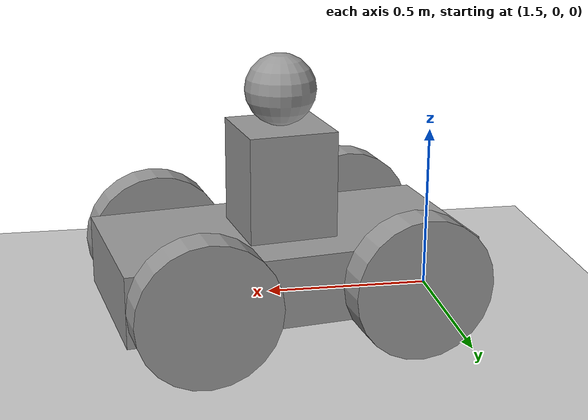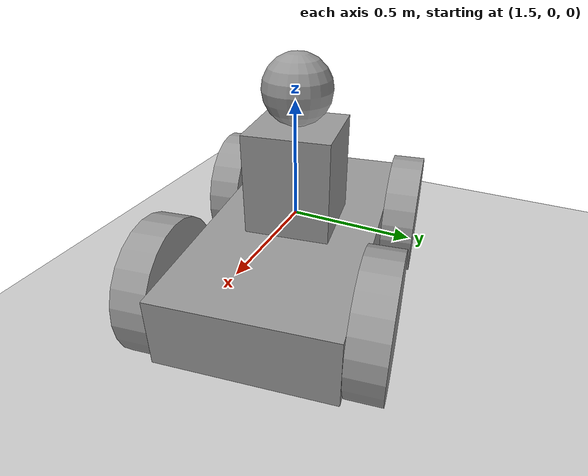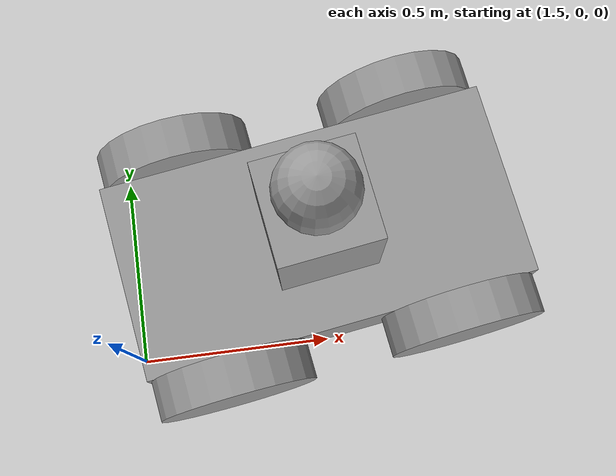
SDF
<sdf version="1.6">
 <world name="default">
  <model name="ground_plane">
   <static>1</static>
   <link name="link">
    <collision name="collision">
     <geometry><plane><normal>0 0 1</normal><size>100 100</size></plane></geometry>
     <surface>
      <contact><collide_bitmask>65535</collide_bitmask></contact>
      <friction><ode><mu>100</mu><mu2>50</mu2></ode></friction>
     </surface>
    </collision>
    <visual name="visual">
     <cast_shadows>0</cast_shadows>
     <geometry><plane><normal>0 0 1</normal><size>100 100</size></plane></geometry>
     <material>
      <script><uri>file://media/materials/scripts/gazebo.material</uri><name>Gazebo/Grey</name></script>
     </material>
    </visual>
   </link>
  </model>
  <model name="robot">
   <link name="link_0">
    <pose>0 0 -0.109999 0 -0 0</pose>
    <inertial>
     <mass>1</mass>
     <inertia>
      <ixx>0.166667</ixx>
      <ixy>0</ixy>
      <ixz>0</ixz>
      <iyy>0.166667</iyy>
      <iyz>0</iyz>
      <izz>0.166667</izz>
     </inertia>
    </inertial>
    <visual name="visual">
     <geometry><box><size>1 0.5 0.2</size></box></geometry>
     <material>
      <lighting>1</lighting>
      <script><uri>file://media/materials/scripts/gazebo.material</uri><name>Gazebo/Grey</name></script>
      <shader type="pixel"><normal_map>__default__</normal_map></shader>
      <ambient>0.3 0.3 0.3 1</ambient>
      <diffuse>0.7 0.7 0.7 1</diffuse>
      <specular>0.01 0.01 0.01 1</specular>
      <emissive>0 0 0 1</emissive>
     </material>
    </visual>
    <collision name="collision">
     <geometry><box><size>1 0.5 0.2</size></box></geometry>
     <surface>
      <friction>
       <ode><mu>1</mu><mu2>1</mu2><fdir1>0 0 0</fdir1><slip1>0</slip1><slip2>0</slip2></ode>
       <torsional>
        <coefficient>1</coefficient>
        <patch_radius>0</patch_radius>
        <surface_radius>0</surface_radius>
        <use_patch_radius>1</use_patch_radius>
        <ode><slip>0</slip></ode>
       </torsional>
      </friction>
      <bounce><restitution_coefficient>0</restitution_coefficient><threshold>1e+06</threshold></bounce>
      <contact>
       <collide_without_contact>0</collide_without_contact>
       <collide_without_contact_bitmask>1</collide_without_contact_bitmask>
       <collide_bitmask>1</collide_bitmask>
       <ode>
        <soft_cfm>0</soft_cfm>
        <soft_erp>0.2</soft_erp>
        <kp>1e+13</kp>
        <kd>1</kd>
        <max_vel>0.01</max_vel>
        <min_depth>0</min_depth>
       </ode>
       <bullet>
        <split_impulse>1</split_impulse>
        <split_impulse_penetration_threshold>-0.01</split_impulse_penetration_threshold>
        <soft_cfm>0</soft_cfm>
        <soft_erp>0.2</soft_erp>
        <kp>1e+13</kp>
        <kd>1</kd>
       </bullet>
      </contact>
     </surface>
    </collision>
   </link>
   <link name="link_1">
    <pose>-0.3 -0.300019 -0.090004 1.5707 -0 0</pose>
    <inertial>
     <mass>1</mass>
     <inertia><ixx>0.145833</ixx><ixy>0</ixy><ixz>0</ixz><iyy>0.145833</iyy><iyz>0</iyz><izz>0.125</izz></inertia>
    </inertial>
    <visual name="visual">
     <geometry><cylinder><radius>0.2</radius><length>0.1</length></cylinder></geometry>
     <material>
      <lighting>1</lighting>
      <script><uri>file://media/materials/scripts/gazebo.material</uri><name>Gazebo/Grey</name></script>
      <shader type="pixel"><normal_map>__default__</normal_map></shader>
      <ambient>0.3 0.3 0.3 1</ambient>
      <diffuse>0.7 0.7 0.7 1</diffuse>
      <specular>0.01 0.01 0.01 1</specular>
      <emissive>0 0 0 1</emissive>
     </material>
    </visual>
    <collision name="collision">
     <geometry><cylinder><radius>0.2</radius><length>0.1</length></cylinder></geometry>
     <surface>
      <friction>
       <ode><mu>1</mu><mu2>1</mu2><fdir1>0 0 0</fdir1><slip1>0</slip1><slip2>0</slip2></ode>
       <torsional>
        <coefficient>1</coefficient>
        <patch_radius>0</patch_radius>
        <surface_radius>0</surface_radius>
        <use_patch_radius>1</use_patch_radius>
        <ode><slip>0</slip></ode>
       </torsional>
      </friction>
      <bounce><restitution_coefficient>0</restitution_coefficient><threshold>1e+06</threshold></bounce>
      <contact>
       <collide_without_contact>0</collide_without_contact>
       <collide_without_contact_bitmask>1</collide_without_contact_bitmask>
       <collide_bitmask>1</collide_bitmask>
       <ode>
        <soft_cfm>0</soft_cfm>
        <soft_erp>0.2</soft_erp>
        <kp>1e+13</kp>
        <kd>1</kd>
        <max_vel>0.01</max_vel>
        <min_depth>0</min_depth>
       </ode>
       <bullet>
        <split_impulse>1</split_impulse>
        <split_impulse_penetration_threshold>-0.01</split_impulse_penetration_threshold>
        <soft_cfm>0</soft_cfm>
        <soft_erp>0.2</soft_erp>
        <kp>1e+13</kp>
        <kd>1</kd>
       </bullet>
      </contact>
     </surface>
    </collision>
   </link>
   <link name="link_1_clone">
    <pose>-0.3 0.300019 -0.109999 1.5707 -0 0</pose>
    <inertial>
     <mass>1</mass>
     <inertia><ixx>0.145833</ixx><ixy>0</ixy><ixz>0</ixz><iyy>0.145833</iyy><iyz>0</iyz><izz>0.125</izz></inertia>
    </inertial>
    <visual name="visual">
     <geometry><cylinder><radius>0.2</radius><length>0.1</length></cylinder></geometry>
     <material>
      <lighting>1</lighting>
      <script><uri>file://media/materials/scripts/gazebo.material</uri><name>Gazebo/Grey</name></script>
      <shader type="pixel"><normal_map>__default__</normal_map></shader>
      <ambient>0.3 0.3 0.3 1</ambient>
      <diffuse>0.7 0.7 0.7 1</diffuse>
      <specular>0.01 0.01 0.01 1</specular>
      <emissive>0 0 0 1</emissive>
     </material>
    </visual>
    <collision name="collision">
     <geometry><cylinder><radius>0.2</radius><length>0.1</length></cylinder></geometry>
     <surface>
      <friction>
       <ode><mu>1</mu><mu2>1</mu2><fdir1>0 0 0</fdir1><slip1>0</slip1><slip2>0</slip2></ode>
       <torsional>
        <coefficient>1</coefficient>
        <patch_radius>0</patch_radius>
        <surface_radius>0</surface_radius>
        <use_patch_radius>1</use_patch_radius>
        <ode><slip>0</slip></ode>
       </torsional>
      </friction>
      <bounce><restitution_coefficient>0</restitution_coefficient><threshold>1e+06</threshold></bounce>
      <contact>
       <collide_without_contact>0</collide_without_contact>
       <collide_without_contact_bitmask>1</collide_without_contact_bitmask>
       <collide_bitmask>1</collide_bitmask>
       <ode>
        <soft_cfm>0</soft_cfm>
        <soft_erp>0.2</soft_erp>
        <kp>1e+13</kp>
        <kd>1</kd>
        <max_vel>0.01</max_vel>
        <min_depth>0</min_depth>
       </ode>
       <bullet>
        <split_impulse>1</split_impulse>
        <split_impulse_penetration_threshold>-0.01</split_impulse_penetration_threshold>
        <soft_cfm>0</soft_cfm>
        <soft_erp>0.2</soft_erp>
        <kp>1e+13</kp>
        <kd>1</kd>
       </bullet>
      </contact>
     </surface>
    </collision>
   </link>
   <link name="link_1_clone_clone">
    <pose>0.3 -0.300019 -0.109999 1.5707 -0 0</pose>
    <inertial>
     <mass>1</mass>
     <inertia><ixx>0.145833</ixx><ixy>0</ixy><ixz>0</ixz><iyy>0.145833</iyy><iyz>0</iyz><izz>0.125</izz></inertia>
    </inertial>
    <visual name="visual">
     <geometry><cylinder><radius>0.2</radius><length>0.1</length></cylinder></geometry>
     <material>
      <lighting>1</lighting>
      <script><uri>file://media/materials/scripts/gazebo.material</uri><name>Gazebo/Grey</name></script>
      <shader type="pixel"><normal_map>__default__</normal_map></shader>
      <ambient>0.3 0.3 0.3 1</ambient>
      <diffuse>0.7 0.7 0.7 1</diffuse>
      <specular>0.01 0.01 0.01 1</specular>
      <emissive>0 0 0 1</emissive>
     </material>
    </visual>
    <collision name="collision">
     <geometry><cylinder><radius>0.2</radius><length>0.1</length></cylinder></geometry>
     <surface>
      <friction>
       <ode><mu>1</mu><mu2>1</mu2><fdir1>0 0 0</fdir1><slip1>0</slip1><slip2>0</slip2></ode>
       <torsional>
        <coefficient>1</coefficient>
        <patch_radius>0</patch_radius>
        <surface_radius>0</surface_radius>
        <use_patch_radius>1</use_patch_radius>
        <ode><slip>0</slip></ode>
       </torsional>
      </friction>
      <bounce><restitution_coefficient>0</restitution_coefficient><threshold>1e+06</threshold></bounce>
      <contact>
       <collide_without_contact>0</collide_without_contact>
       <collide_without_contact_bitmask>1</collide_without_contact_bitmask>
       <collide_bitmask>1</collide_bitmask>
       <ode>
        <soft_cfm>0</soft_cfm>
        <soft_erp>0.2</soft_erp>
        <kp>1e+13</kp>
        <kd>1</kd>
        <max_vel>0.01</max_vel>
        <min_depth>0</min_depth>
       </ode>
       <bullet>
        <split_impulse>1</split_impulse>
        <split_impulse_penetration_threshold>-0.01</split_impulse_penetration_threshold>
        <soft_cfm>0</soft_cfm>
        <soft_erp>0.2</soft_erp>
        <kp>1e+13</kp>
        <kd>1</kd>
       </bullet>
      </contact>
     </surface>
    </collision>
   </link>
   <link name="link_1_clone_clone_clone">
    <pose>0.3 0.300019 -0.109999 1.5707 -0 0</pose>
    <inertial>
     <mass>1</mass>
     <inertia><ixx>0.145833</ixx><ixy>0</ixy><ixz>0</ixz><iyy>0.145833</iyy><iyz>0</iyz><izz>0.125</izz></inertia>
    </inertial>
    <visual name="visual">
     <geometry><cylinder><radius>0.2</radius><length>0.1</length></cylinder></geometry>
     <material>
      <lighting>1</lighting>
      <script><uri>file://media/materials/scripts/gazebo.material</uri><name>Gazebo/Grey</name></script>
      <shader type="pixel"><normal_map>__default__</normal_map></shader>
      <ambient>0.3 0.3 0.3 1</ambient>
      <diffuse>0.7 0.7 0.7 1</diffuse>
      <specular>0.01 0.01 0.01 1</specular>
      <emissive>0 0 0 1</emissive>
     </material>
    </visual>
    <collision name="collision">
     <geometry><cylinder><radius>0.2</radius><length>0.1</length></cylinder></geometry>
     <surface>
      <friction>
       <ode><mu>1</mu><mu2>1</mu2><fdir1>0 0 0</fdir1><slip1>0</slip1><slip2>0</slip2></ode>
       <torsional>
        <coefficient>1</coefficient>
        <patch_radius>0</patch_radius>
        <surface_radius>0</surface_radius>
        <use_patch_radius>1</use_patch_radius>
        <ode><slip>0</slip></ode>
       </torsional>
      </friction>
      <bounce><restitution_coefficient>0</restitution_coefficient><threshold>1e+06</threshold></bounce>
      <contact>
       <collide_without_contact>0</collide_without_contact>
       <collide_without_contact_bitmask>1</collide_without_contact_bitmask>
       <collide_bitmask>1</collide_bitmask>
       <ode>
        <soft_cfm>0</soft_cfm>
        <soft_erp>0.2</soft_erp>
        <kp>1e+13</kp>
        <kd>1</kd>
        <max_vel>0.01</max_vel>
        <min_depth>0</min_depth>
       </ode>
       <bullet>
        <split_impulse>1</split_impulse>
        <split_impulse_penetration_threshold>-0.01</split_impulse_penetration_threshold>
        <soft_cfm>0</soft_cfm>
        <soft_erp>0.2</soft_erp>
        <kp>1e+13</kp>
        <kd>1</kd>
       </bullet>
      </contact>
     </surface>
    </collision>
   </link>
   <link name="link_2">
    <pose>-0 0 0.140001 0 -0 0</pose>
    <inertial>
     <mass>1</mass>
     <inertia>
      <ixx>0.166667</ixx>
      <ixy>0</ixy>
      <ixz>0</ixz>
      <iyy>0.166667</iyy>
      <iyz>0</iyz>
      <izz>0.166667</izz>
     </inertia>
    </inertial>
    <visual name="visual">
     <geometry><box><size>0.25 0.25 0.3</size></box></geometry>
     <material>
      <lighting>1</lighting>
      <script><uri>file://media/materials/scripts/gazebo.material</uri><name>Gazebo/Grey</name></script>
      <shader type="pixel"><normal_map>__default__</normal_map></shader>
      <ambient>0.3 0.3 0.3 1</ambient>
      <diffuse>0.7 0.7 0.7 1</diffuse>
      <specular>0.01 0.01 0.01 1</specular>
      <emissive>0 0 0 1</emissive>
     </material>
    </visual>
    <collision name="collision">
     <geometry><box><size>0.25 0.25 0.3</size></box></geometry>
     <surface>
      <friction>
       <ode><mu>1</mu><mu2>1</mu2><fdir1>0 0 0</fdir1><slip1>0</slip1><slip2>0</slip2></ode>
       <torsional>
        <coefficient>1</coefficient>
        <patch_radius>0</patch_radius>
        <surface_radius>0</surface_radius>
        <use_patch_radius>1</use_patch_radius>
        <ode><slip>0</slip></ode>
       </torsional>
      </friction>
      <bounce><restitution_coefficient>0</restitution_coefficient><threshold>1e+06</threshold></bounce>
      <contact>
       <collide_without_contact>0</collide_without_contact>
       <collide_without_contact_bitmask>1</collide_without_contact_bitmask>
       <collide_bitmask>1</collide_bitmask>
       <ode>
        <soft_cfm>0</soft_cfm>
        <soft_erp>0.2</soft_erp>
        <kp>1e+13</kp>
        <kd>1</kd>
        <max_vel>0.01</max_vel>
        <min_depth>0</min_depth>
       </ode>
       <bullet>
        <split_impulse>1</split_impulse>
        <split_impulse_penetration_threshold>-0.01</split_impulse_penetration_threshold>
        <soft_cfm>0</soft_cfm>
        <soft_erp>0.2</soft_erp>
        <kp>1e+13</kp>
        <kd>1</kd>
       </bullet>
      </contact>
     </surface>
    </collision>
   </link>
   <link name="link_3">
    <pose>-0 0 0.390001 0 -0 0</pose>
    <inertial>
     <mass>1</mass>
     <inertia><ixx>0.1</ixx><ixy>0</ixy><ixz>0</ixz><iyy>0.1</iyy><iyz>0</iyz><izz>0.1</izz></inertia>
    </inertial>
    <visual name="visual">
     <geometry><sphere><radius>0.1</radius></sphere></geometry>
     <material>
      <lighting>1</lighting>
      <script><uri>file://media/materials/scripts/gazebo.material</uri><name>Gazebo/Grey</name></script>
      <shader type="pixel"><normal_map>__default__</normal_map></shader>
      <ambient>0.3 0.3 0.3 1</ambient>
      <diffuse>0.7 0.7 0.7 1</diffuse>
      <specular>0.01 0.01 0.01 1</specular>
      <emissive>0 0 0 1</emissive>
     </material>
    </visual>
    <collision name="collision">
     <geometry><sphere><radius>0.1</radius></sphere></geometry>
     <surface>
      <friction>
       <ode><mu>1</mu><mu2>1</mu2><fdir1>0 0 0</fdir1><slip1>0</slip1><slip2>0</slip2></ode>
       <torsional>
        <coefficient>1</coefficient>
        <patch_radius>0</patch_radius>
        <surface_radius>0</surface_radius>
        <use_patch_radius>1</use_patch_radius>
        <ode><slip>0</slip></ode>
       </torsional>
      </friction>
      <bounce><restitution_coefficient>0</restitution_coefficient><threshold>1e+06</threshold></bounce>
      <contact>
       <collide_without_contact>0</collide_without_contact>
       <collide_without_contact_bitmask>1</collide_without_contact_bitmask>
       <collide_bitmask>1</collide_bitmask>
       <ode>
        <soft_cfm>0</soft_cfm>
        <soft_erp>0.2</soft_erp>
        <kp>1e+13</kp>
        <kd>1</kd>
        <max_vel>0.01</max_vel>
        <min_depth>0</min_depth>
       </ode>
       <bullet>
        <split_impulse>1</split_impulse>
        <split_impulse_penetration_threshold>-0.01</split_impulse_penetration_threshold>
        <soft_cfm>0</soft_cfm>
        <soft_erp>0.2</soft_erp>
        <kp>1e+13</kp>
        <kd>1</kd>
       </bullet>
      </contact>
     </surface>
    </collision>
   </link>
   <joint name="link_0_JOINT_0_0" type="fixed">
    <parent>link_0</parent>
    <child>link_2</child>
    <physics>
     <ode><limit><cfm>0</cfm><erp>0.2</erp></limit><suspension><cfm>0</cfm><erp>0.2</erp></suspension></ode>
    </physics>
   </joint>
   <joint name="link_0_JOINT_0" type="revolute">
    <parent>link_0</parent>
    <child>link_1</child>
    <axis>
     <xyz>0 0 1</xyz>
     <use_parent_model_frame>0</use_parent_model_frame>
     <limit>
      <lower>-1.79769e+308</lower>
      <upper>1.79769e+308</upper>
      <effort>-1</effort>
      <velocity>-1</velocity>
     </limit>
     <dynamics>
      <spring_reference>0</spring_reference>
      <spring_stiffness>0</spring_stiffness>
      <damping>0</damping>
      <friction>0</friction>
     </dynamics>
    </axis>
    <physics>
     <ode><limit><cfm>0</cfm><erp>0.2</erp></limit><suspension><cfm>0</cfm><erp>0.2</erp></suspension></ode>
    </physics>
   </joint>
   <joint name="link_0_JOINT_1" type="revolute">
    <parent>link_0</parent>
    <child>link_1</child>
    <axis>
     <xyz>0 0 1</xyz>
     <use_parent_model_frame>0</use_parent_model_frame>
     <limit>
      <lower>-1.79769e+308</lower>
      <upper>1.79769e+308</upper>
      <effort>-1</effort>
      <velocity>-1</velocity>
     </limit>
     <dynamics>
      <spring_reference>0</spring_reference>
      <spring_stiffness>0</spring_stiffness>
      <damping>0</damping>
      <friction>0</friction>
     </dynamics>
    </axis>
    <physics>
     <ode><limit><cfm>0</cfm><erp>0.2</erp></limit><suspension><cfm>0</cfm><erp>0.2</erp></suspension></ode>
    </physics>
   </joint>
   <joint name="link_0_JOINT_2" type="revolute">
    <parent>link_0</parent>
    <child>link_1_clone</child>
    <axis>
     <xyz>0 0 -1</xyz>
     <use_parent_model_frame>0</use_parent_model_frame>
     <limit>
      <lower>-1.79769e+308</lower>
      <upper>1.79769e+308</upper>
      <effort>-1</effort>
      <velocity>-1</velocity>
     </limit>
     <dynamics>
      <spring_reference>0</spring_reference>
      <spring_stiffness>0</spring_stiffness>
      <damping>0</damping>
      <friction>0</friction>
     </dynamics>
    </axis>
    <physics>
     <ode><limit><cfm>0</cfm><erp>0.2</erp></limit><suspension><cfm>0</cfm><erp>0.2</erp></suspension></ode>
    </physics>
   </joint>
   <joint name="link_0_JOINT_3" type="revolute">
    <parent>link_0</parent>
    <child>link_1_clone_clone</child>
    <axis>
     <xyz>0 0 1</xyz>
     <use_parent_model_frame>0</use_parent_model_frame>
     <limit>
      <lower>-1.79769e+308</lower>
      <upper>1.79769e+308</upper>
      <effort>-1</effort>
      <velocity>-1</velocity>
     </limit>
     <dynamics>
      <spring_reference>0</spring_reference>
      <spring_stiffness>0</spring_stiffness>
      <damping>0</damping>
      <friction>0</friction>
     </dynamics>
    </axis>
    <physics>
     <ode><limit><cfm>0</cfm><erp>0.2</erp></limit><suspension><cfm>0</cfm><erp>0.2</erp></suspension></ode>
    </physics>
   </joint>
   <joint name="link_0_JOINT_4" type="revolute">
    <parent>link_0</parent>
    <child>link_1_clone_clone_clone</child>
    <axis>
     <xyz>0 0 -1</xyz>
     <use_parent_model_frame>0</use_parent_model_frame>
     <limit>
      <lower>-1.79769e+308</lower>
      <upper>1.79769e+308</upper>
      <effort>-1</effort>
      <velocity>-1</velocity>
     </limit>
     <dynamics>
      <spring_reference>0</spring_reference>
      <spring_stiffness>0</spring_stiffness>
      <damping>0</damping>
      <friction>0</friction>
     </dynamics>
    </axis>
    <physics>
     <ode><limit><cfm>0</cfm><erp>0.2</erp></limit><suspension><cfm>0</cfm><erp>0.2</erp></suspension></ode>
    </physics>
   </joint>
   <joint name="link_2_JOINT_5" type="ball">
    <parent>link_2</parent>
    <child>link_3</child>
    <physics>
     <ode><limit><cfm>0</cfm><erp>0.2</erp></limit><suspension><cfm>0</cfm><erp>0.2</erp></suspension></ode>
    </physics>
   </joint>
   <static>0</static>
   <pose>2.0016 0.24432 0.309995 0.000104 -9e-05 0.151933</pose>
  </model>
 </world>
</sdf>
